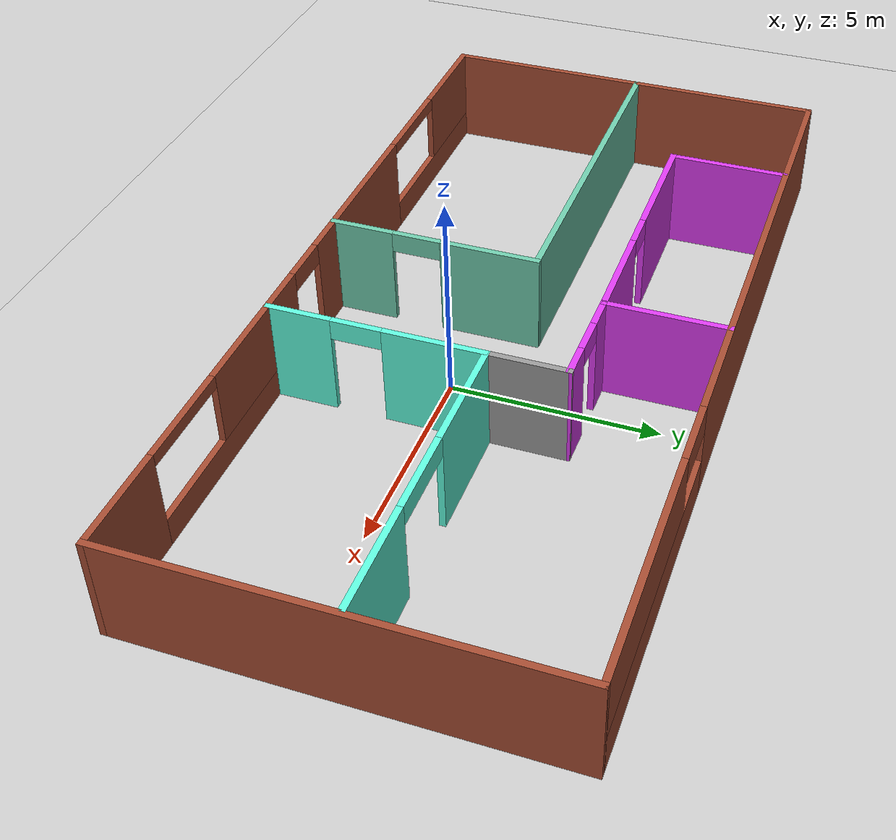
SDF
<sdf version="1.6">
 <world name="default">
  <model name="ground_plane">
   <static>1</static>
   <link name="link">
    <collision name="collision">
     <geometry><plane><normal>0 0 1</normal><size>100 100</size></plane></geometry>
     <surface>
      <contact><collide_bitmask>65535</collide_bitmask></contact>
      <friction><ode><mu>100</mu><mu2>50</mu2></ode></friction>
     </surface>
    </collision>
    <visual name="visual">
     <cast_shadows>0</cast_shadows>
     <geometry><plane><normal>0 0 1</normal><size>100 100</size></plane></geometry>
     <material>
      <script><uri>file://media/materials/scripts/gazebo.material</uri><name>Gazebo/Grey</name></script>
     </material>
    </visual>
   </link>
  </model>
  <model name="Building1">
   <pose>-1.0678 1.2025 0 0 -0 0</pose>
   <link name="Wall_10">
    <collision name="Wall_10_Collision">
     <geometry><box><size>10 0.15 2.5</size></box></geometry>
     <pose>0 0 1.25 0 -0 0</pose>
    </collision>
    <visual name="Wall_10_Visual">
     <pose>0 0 1.25 0 -0 0</pose>
     <geometry><box><size>10 0.15 2.5</size></box></geometry>
     <material>
      <script><uri>file://media/materials/scripts/gazebo.material</uri><name>Gazebo/Bricks</name></script>
      <ambient>1 1 1 1</ambient>
     </material>
     <meta><layer>0</layer></meta>
    </visual>
    <pose>-9.925 0 0 0 -0 1.5708</pose>
   </link>
   <link name="Wall_12">
    <pose>-0 4.925 0 0 -0 0</pose>
    <visual name="Wall_12_Visual_0">
     <pose>-3.67331 0 1.25 0 -0 0</pose>
     <geometry><box><size>12.6534 0.15 2.5</size></box></geometry>
     <material>
      <script><uri>file://media/materials/scripts/gazebo.material</uri><name>Gazebo/Bricks</name></script>
      <ambient>1 1 1 1</ambient>
     </material>
     <meta><layer>0</layer></meta>
    </visual>
    <collision name="Wall_12_Collision_0">
     <geometry><box><size>12.6534 0.15 2.5</size></box></geometry>
     <pose>-3.67331 0 1.25 0 -0 0</pose>
    </collision>
    <visual name="Wall_12_Visual_1">
     <pose>6.32669 0 0.5 0 -0 0</pose>
     <geometry><box><size>7.34662 0.15 1</size></box></geometry>
     <material>
      <script><uri>file://media/materials/scripts/gazebo.material</uri><name>Gazebo/Bricks</name></script>
      <ambient>1 1 1 1</ambient>
     </material>
     <meta><layer>0</layer></meta>
    </visual>
    <collision name="Wall_12_Collision_1">
     <geometry><box><size>7.34662 0.15 1</size></box></geometry>
     <pose>6.32669 0 0.5 0 -0 0</pose>
    </collision>
    <visual name="Wall_12_Visual_2">
     <pose>7.12669 0 1.75 0 -0 0</pose>
     <geometry><box><size>5.74662 0.15 1.5</size></box></geometry>
     <material>
      <script><uri>file://media/materials/scripts/gazebo.material</uri><name>Gazebo/Bricks</name></script>
      <ambient>1 1 1 1</ambient>
     </material>
     <meta><layer>0</layer></meta>
    </visual>
    <collision name="Wall_12_Collision_2">
     <geometry><box><size>5.74662 0.15 1.5</size></box></geometry>
     <pose>7.12669 0 1.75 0 -0 0</pose>
    </collision>
    <visual name="Wall_12_Visual_3">
     <pose>3.45338 0 2.15 0 -0 0</pose>
     <geometry><box><size>1.6 0.15 0.7</size></box></geometry>
     <material>
      <script><uri>file://media/materials/scripts/gazebo.material</uri><name>Gazebo/Bricks</name></script>
      <ambient>1 1 1 1</ambient>
     </material>
     <meta><layer>0</layer></meta>
    </visual>
    <collision name="Wall_12_Collision_3">
     <geometry><box><size>1.6 0.15 0.7</size></box></geometry>
     <pose>3.45338 0 2.15 0 -0 0</pose>
    </collision>
   </link>
   <link name="Wall_13">
    <collision name="Wall_13_Collision">
     <geometry><box><size>10 0.15 2.5</size></box></geometry>
     <pose>0 0 1.25 0 -0 0</pose>
    </collision>
    <visual name="Wall_13_Visual">
     <pose>0 0 1.25 0 -0 0</pose>
     <geometry><box><size>10 0.15 2.5</size></box></geometry>
     <material>
      <script><uri>file://media/materials/scripts/gazebo.material</uri><name>Gazebo/Bricks</name></script>
      <ambient>1 1 1 1</ambient>
     </material>
     <meta><layer>0</layer></meta>
    </visual>
    <pose>9.925 0 0 0 -0 -1.5708</pose>
   </link>
   <link name="Wall_14">
    <pose>-0 -4.925 0 0 -0 3.14159</pose>
    <visual name="Wall_14_Visual_0">
     <pose>-8.75026 0 1.25 0 -0 0</pose>
     <geometry><box><size>2.49948 0.15 2.5</size></box></geometry>
     <material>
      <script><uri>file://media/materials/scripts/gazebo.material</uri><name>Gazebo/Bricks</name></script>
      <ambient>1 1 1 1</ambient>
     </material>
     <meta><layer>0</layer></meta>
    </visual>
    <collision name="Wall_14_Collision_0">
     <geometry><box><size>2.49948 0.15 2.5</size></box></geometry>
     <pose>-8.75026 0 1.25 0 -0 0</pose>
    </collision>
    <visual name="Wall_14_Visual_1">
     <pose>2.37306 0 1.25 0 -0 0</pose>
     <geometry><box><size>4.76763 0.15 2.5</size></box></geometry>
     <material>
      <script><uri>file://media/materials/scripts/gazebo.material</uri><name>Gazebo/Bricks</name></script>
      <ambient>1 1 1 1</ambient>
     </material>
     <meta><layer>0</layer></meta>
    </visual>
    <collision name="Wall_14_Collision_1">
     <geometry><box><size>4.76763 0.15 2.5</size></box></geometry>
     <pose>2.37306 0 1.25 0 -0 0</pose>
    </collision>
    <visual name="Wall_14_Visual_2">
     <pose>-4.35564 0 0.35 0 -0 0</pose>
     <geometry><box><size>6.28977 0.15 0.7</size></box></geometry>
     <material>
      <script><uri>file://media/materials/scripts/gazebo.material</uri><name>Gazebo/Bricks</name></script>
      <ambient>1 1 1 1</ambient>
     </material>
     <meta><layer>0</layer></meta>
    </visual>
    <collision name="Wall_14_Collision_2">
     <geometry><box><size>6.28977 0.15 0.7</size></box></geometry>
     <pose>-4.35564 0 0.35 0 -0 0</pose>
    </collision>
    <visual name="Wall_14_Visual_3">
     <pose>7.37844 0 0.35 0 -0 0</pose>
     <geometry><box><size>5.24313 0.15 0.7</size></box></geometry>
     <material>
      <script><uri>file://media/materials/scripts/gazebo.material</uri><name>Gazebo/Bricks</name></script>
      <ambient>1 1 1 1</ambient>
     </material>
     <meta><layer>0</layer></meta>
    </visual>
    <collision name="Wall_14_Collision_3">
     <geometry><box><size>5.24313 0.15 0.7</size></box></geometry>
     <pose>7.37844 0 0.35 0 -0 0</pose>
    </collision>
    <visual name="Wall_14_Visual_4">
     <pose>-3.10564 0 1.6 0 -0 0</pose>
     <geometry><box><size>3.78977 0.15 1.8</size></box></geometry>
     <material>
      <script><uri>file://media/materials/scripts/gazebo.material</uri><name>Gazebo/Bricks</name></script>
      <ambient>1 1 1 1</ambient>
     </material>
     <meta><layer>0</layer></meta>
    </visual>
    <collision name="Wall_14_Collision_4">
     <geometry><box><size>3.78977 0.15 1.8</size></box></geometry>
     <pose>-3.10564 0 1.6 0 -0 0</pose>
    </collision>
    <visual name="Wall_14_Visual_5">
     <pose>-3.10564 0 1.6 0 -0 0</pose>
     <geometry><box><size>3.78977 0.15 1.8</size></box></geometry>
     <material>
      <script><uri>file://media/materials/scripts/gazebo.material</uri><name>Gazebo/Bricks</name></script>
      <ambient>1 1 1 1</ambient>
     </material>
     <meta><layer>0</layer></meta>
    </visual>
    <collision name="Wall_14_Collision_5">
     <geometry><box><size>3.78977 0.15 1.8</size></box></geometry>
     <pose>-3.10564 0 1.6 0 -0 0</pose>
    </collision>
    <visual name="Wall_14_Visual_6">
     <pose>8.62844 0 1.6 0 -0 0</pose>
     <geometry><box><size>2.74313 0.15 1.8</size></box></geometry>
     <material>
      <script><uri>file://media/materials/scripts/gazebo.material</uri><name>Gazebo/Bricks</name></script>
      <ambient>1 1 1 1</ambient>
     </material>
     <meta><layer>0</layer></meta>
    </visual>
    <collision name="Wall_14_Collision_6">
     <geometry><box><size>2.74313 0.15 1.8</size></box></geometry>
     <pose>8.62844 0 1.6 0 -0 0</pose>
    </collision>
    <visual name="Wall_14_Visual_7">
     <pose>-0.610755 0 2.25 0 -0 0</pose>
     <geometry><box><size>1.2 0.15 0.5</size></box></geometry>
     <material>
      <script><uri>file://media/materials/scripts/gazebo.material</uri><name>Gazebo/Bricks</name></script>
      <ambient>1 1 1 1</ambient>
     </material>
     <meta><layer>0</layer></meta>
    </visual>
    <collision name="Wall_14_Collision_7">
     <geometry><box><size>1.2 0.15 0.5</size></box></geometry>
     <pose>-0.610755 0 2.25 0 -0 0</pose>
    </collision>
    <visual name="Wall_14_Visual_8">
     <pose>-0.610755 0 2.25 0 -0 0</pose>
     <geometry><box><size>1.2 0.15 0.5</size></box></geometry>
     <material>
      <script><uri>file://media/materials/scripts/gazebo.material</uri><name>Gazebo/Bricks</name></script>
      <ambient>1 1 1 1</ambient>
     </material>
     <meta><layer>0</layer></meta>
    </visual>
    <collision name="Wall_14_Collision_8">
     <geometry><box><size>1.2 0.15 0.5</size></box></geometry>
     <pose>-0.610755 0 2.25 0 -0 0</pose>
    </collision>
    <visual name="Wall_14_Visual_9">
     <pose>-6.25052 0 2.35 0 -0 0</pose>
     <geometry><box><size>2.5 0.15 0.3</size></box></geometry>
     <material>
      <script><uri>file://media/materials/scripts/gazebo.material</uri><name>Gazebo/Bricks</name></script>
      <ambient>1 1 1 1</ambient>
     </material>
     <meta><layer>0</layer></meta>
    </visual>
    <collision name="Wall_14_Collision_9">
     <geometry><box><size>2.5 0.15 0.3</size></box></geometry>
     <pose>-6.25052 0 2.35 0 -0 0</pose>
    </collision>
    <visual name="Wall_14_Visual_10">
     <pose>6.00687 0 2.35 0 -0 0</pose>
     <geometry><box><size>2.5 0.15 0.3</size></box></geometry>
     <material>
      <script><uri>file://media/materials/scripts/gazebo.material</uri><name>Gazebo/Bricks</name></script>
      <ambient>1 1 1 1</ambient>
     </material>
     <meta><layer>0</layer></meta>
    </visual>
    <collision name="Wall_14_Collision_10">
     <geometry><box><size>2.5 0.15 0.3</size></box></geometry>
     <pose>6.00687 0 2.35 0 -0 0</pose>
    </collision>
   </link>
   <link name="Wall_16">
    <collision name="Wall_16_Collision">
     <geometry><box><size>9 0.15 2.5</size></box></geometry>
     <pose>0 0 1.25 0 -0 0</pose>
    </collision>
    <visual name="Wall_16_Visual">
     <pose>0 0 1.25 0 -0 0</pose>
     <geometry><box><size>9 0.15 2.5</size></box></geometry>
     <material>
      <script><uri>file://media/materials/scripts/gazebo.material</uri><name>Gazebo/Grey</name></script>
      <ambient>0.435294 0.796078 0.67451 1</ambient>
     </material>
     <meta><layer>0</layer></meta>
    </visual>
    <pose>-5.4835 0.182385 0 0 -0 0</pose>
   </link>
   <link name="Wall_17">
    <pose>-1.0585 -2.36761 0 0 -0 -1.5708</pose>
    <visual name="Wall_17_Visual_0">
     <pose>-1.39742 0 1.25 0 -0 0</pose>
     <geometry><box><size>2.45515 0.15 2.5</size></box></geometry>
     <material>
      <script><uri>file://media/materials/scripts/gazebo.material</uri><name>Gazebo/Grey</name></script>
      <ambient>0.435294 0.796078 0.67451 1</ambient>
     </material>
     <meta><layer>0</layer></meta>
    </visual>
    <collision name="Wall_17_Collision_0">
     <geometry><box><size>2.45515 0.15 2.5</size></box></geometry>
     <pose>-1.39742 0 1.25 0 -0 0</pose>
    </collision>
    <visual name="Wall_17_Visual_1">
     <pose>1.82757 0 1.25 0 -0 0</pose>
     <geometry><box><size>1.59485 0.15 2.5</size></box></geometry>
     <material>
      <script><uri>file://media/materials/scripts/gazebo.material</uri><name>Gazebo/Grey</name></script>
      <ambient>0.435294 0.796078 0.67451 1</ambient>
     </material>
     <meta><layer>0</layer></meta>
    </visual>
    <collision name="Wall_17_Collision_1">
     <geometry><box><size>1.59485 0.15 2.5</size></box></geometry>
     <pose>1.82757 0 1.25 0 -0 0</pose>
    </collision>
    <visual name="Wall_17_Visual_2">
     <pose>0.430149 0 2.25 0 -0 0</pose>
     <geometry><box><size>1.2 0.15 0.5</size></box></geometry>
     <material>
      <script><uri>file://media/materials/scripts/gazebo.material</uri><name>Gazebo/Grey</name></script>
      <ambient>0.435294 0.796078 0.67451 1</ambient>
     </material>
     <meta><layer>0</layer></meta>
    </visual>
    <collision name="Wall_17_Collision_2">
     <geometry><box><size>1.2 0.15 0.5</size></box></geometry>
     <pose>0.430149 0 2.25 0 -0 0</pose>
    </collision>
   </link>
   <link name="Wall_19">
    <pose>6.13498 0.195027 0 0 -0 0</pose>
    <visual name="Wall_19_Visual_0">
     <pose>-2.3286 0 1.25 0 -0 0</pose>
     <geometry><box><size>2.8428 0.15 2.5</size></box></geometry>
     <material>
      <script><uri>file://media/materials/scripts/gazebo.material</uri><name>Gazebo/Grey</name></script>
      <ambient>0.372549 0.988235 0.870588 1</ambient>
     </material>
     <meta><layer>0</layer></meta>
    </visual>
    <collision name="Wall_19_Collision_0">
     <geometry><box><size>2.8428 0.15 2.5</size></box></geometry>
     <pose>-2.3286 0 1.25 0 -0 0</pose>
    </collision>
    <visual name="Wall_19_Visual_1">
     <pose>2.4214 0 1.25 0 -0 0</pose>
     <geometry><box><size>2.6572 0.15 2.5</size></box></geometry>
     <material>
      <script><uri>file://media/materials/scripts/gazebo.material</uri><name>Gazebo/Grey</name></script>
      <ambient>0.372549 0.988235 0.870588 1</ambient>
     </material>
     <meta><layer>0</layer></meta>
    </visual>
    <collision name="Wall_19_Collision_1">
     <geometry><box><size>2.6572 0.15 2.5</size></box></geometry>
     <pose>2.4214 0 1.25 0 -0 0</pose>
    </collision>
    <visual name="Wall_19_Visual_2">
     <pose>0.092803 0 2.25 0 -0 0</pose>
     <geometry><box><size>2 0.15 0.5</size></box></geometry>
     <material>
      <script><uri>file://media/materials/scripts/gazebo.material</uri><name>Gazebo/Grey</name></script>
      <ambient>0.372549 0.988235 0.870588 1</ambient>
     </material>
     <meta><layer>0</layer></meta>
    </visual>
    <collision name="Wall_19_Collision_2">
     <geometry><box><size>2 0.15 0.5</size></box></geometry>
     <pose>0.092803 0 2.25 0 -0 0</pose>
    </collision>
   </link>
   <link name="Wall_21">
    <pose>2.45998 -2.35497 0 0 -0 -1.5708</pose>
    <visual name="Wall_21_Visual_0">
     <pose>-1.3911 0 1.25 0 -0 0</pose>
     <geometry><box><size>2.46779 0.15 2.5</size></box></geometry>
     <material>
      <script><uri>file://media/materials/scripts/gazebo.material</uri><name>Gazebo/Grey</name></script>
      <ambient>0.372549 0.988235 0.870588 1</ambient>
     </material>
     <meta><layer>0</layer></meta>
    </visual>
    <collision name="Wall_21_Collision_0">
     <geometry><box><size>2.46779 0.15 2.5</size></box></geometry>
     <pose>-1.3911 0 1.25 0 -0 0</pose>
    </collision>
    <visual name="Wall_21_Visual_1">
     <pose>1.8339 0 1.25 0 -0 0</pose>
     <geometry><box><size>1.58221 0.15 2.5</size></box></geometry>
     <material>
      <script><uri>file://media/materials/scripts/gazebo.material</uri><name>Gazebo/Grey</name></script>
      <ambient>0.372549 0.988235 0.870588 1</ambient>
     </material>
     <meta><layer>0</layer></meta>
    </visual>
    <collision name="Wall_21_Collision_1">
     <geometry><box><size>1.58221 0.15 2.5</size></box></geometry>
     <pose>1.8339 0 1.25 0 -0 0</pose>
    </collision>
    <visual name="Wall_21_Visual_2">
     <pose>0.442791 0 2.25 0 -0 0</pose>
     <geometry><box><size>1.2 0.15 0.5</size></box></geometry>
     <material>
      <script><uri>file://media/materials/scripts/gazebo.material</uri><name>Gazebo/Grey</name></script>
      <ambient>0.372549 0.988235 0.870588 1</ambient>
     </material>
     <meta><layer>0</layer></meta>
    </visual>
    <collision name="Wall_21_Collision_2">
     <geometry><box><size>1.2 0.15 0.5</size></box></geometry>
     <pose>0.442791 0 2.25 0 -0 0</pose>
    </collision>
   </link>
   <link name="Wall_25">
    <collision name="Wall_25_Collision">
     <geometry><box><size>3 0.15 2.5</size></box></geometry>
     <pose>0 0 1.25 0 -0 0</pose>
    </collision>
    <visual name="Wall_25_Visual">
     <pose>0 0 1.25 0 -0 0</pose>
     <geometry><box><size>3 0.15 2.5</size></box></geometry>
     <material>
      <script><uri>file://media/materials/scripts/gazebo.material</uri><name>Gazebo/Grey</name></script>
      <ambient>0.870588 0.235294 0.941176 1</ambient>
     </material>
     <meta><layer>0</layer></meta>
    </visual>
    <pose>-6.53487 3.46477 0 0 -0 -1.5708</pose>
   </link>
   <link name="Wall_27">
    <collision name="Wall_27_Collision">
     <geometry><box><size>3 0.15 2.5</size></box></geometry>
     <pose>0 0 1.25 0 -0 0</pose>
    </collision>
    <visual name="Wall_27_Visual">
     <pose>0 0 1.25 0 -0 0</pose>
     <geometry><box><size>3 0.15 2.5</size></box></geometry>
     <material>
      <script><uri>file://media/materials/scripts/gazebo.material</uri><name>Gazebo/Grey</name></script>
      <ambient>0.870588 0.235294 0.941176 1</ambient>
     </material>
     <meta><layer>0</layer></meta>
    </visual>
    <pose>-0.02299 3.49092 0 0 -0 -1.5708</pose>
   </link>
   <link name="Wall_28">
    <pose>-3.27893 2.05285 0 0 -0 -3.13758</pose>
    <visual name="Wall_28_Visual_0">
     <pose>-2.02786 0 1.25 0 -0 0</pose>
     <geometry><box><size>2.60622 0.15 2.5</size></box></geometry>
     <material>
      <script><uri>file://media/materials/scripts/gazebo.material</uri><name>Gazebo/Grey</name></script>
      <ambient>0.870588 0.235294 0.941176 1</ambient>
     </material>
     <meta><layer>0</layer></meta>
    </visual>
    <collision name="Wall_28_Collision_0">
     <geometry><box><size>2.60622 0.15 2.5</size></box></geometry>
     <pose>-2.02786 0 1.25 0 -0 0</pose>
    </collision>
    <visual name="Wall_28_Visual_1">
     <pose>1.75311 0 1.25 0 -0 0</pose>
     <geometry><box><size>3.15572 0.15 2.5</size></box></geometry>
     <material>
      <script><uri>file://media/materials/scripts/gazebo.material</uri><name>Gazebo/Grey</name></script>
      <ambient>0.870588 0.235294 0.941176 1</ambient>
     </material>
     <meta><layer>0</layer></meta>
    </visual>
    <collision name="Wall_28_Collision_1">
     <geometry><box><size>3.15572 0.15 2.5</size></box></geometry>
     <pose>1.75311 0 1.25 0 -0 0</pose>
    </collision>
    <visual name="Wall_28_Visual_2">
     <pose>-0.274751 0 2.25 0 -0 0</pose>
     <geometry><box><size>0.9 0.15 0.5</size></box></geometry>
     <material>
      <script><uri>file://media/materials/scripts/gazebo.material</uri><name>Gazebo/Grey</name></script>
      <ambient>0.870588 0.235294 0.941176 1</ambient>
     </material>
     <meta><layer>0</layer></meta>
    </visual>
    <collision name="Wall_28_Collision_2">
     <geometry><box><size>0.9 0.15 0.5</size></box></geometry>
     <pose>-0.274751 0 2.25 0 -0 0</pose>
    </collision>
   </link>
   <link name="Wall_30">
    <collision name="Wall_30_Collision">
     <geometry><box><size>2 0.15 2.5</size></box></geometry>
     <pose>0 0 1.25 0 -0 0</pose>
    </collision>
    <visual name="Wall_30_Visual">
     <pose>0 0 1.25 0 -0 0</pose>
     <geometry><box><size>2 0.15 2.5</size></box></geometry>
     <material>
      <script><uri>file://media/materials/scripts/gazebo.material</uri><name>Gazebo/Grey</name></script>
      <ambient>1 1 1 1</ambient>
     </material>
     <meta><layer>0</layer></meta>
    </visual>
    <pose>2.45998 1.12003 0 0 -0 1.5708</pose>
   </link>
   <link name="Wall_31">
    <pose>1.21849 2.05547 0 0 -0 3.13318</pose>
    <visual name="Wall_31_Visual_0">
     <pose>-0.877056 0 1.25 0 -0 0</pose>
     <geometry><box><size>0.878942 0.15 2.5</size></box></geometry>
     <material>
      <script><uri>file://media/materials/scripts/gazebo.material</uri><name>Gazebo/Grey</name></script>
      <ambient>0.870588 0.235294 0.941176 1</ambient>
     </material>
     <meta><layer>0</layer></meta>
    </visual>
    <collision name="Wall_31_Collision_0">
     <geometry><box><size>0.878942 0.15 2.5</size></box></geometry>
     <pose>-0.877056 0 1.25 0 -0 0</pose>
    </collision>
    <visual name="Wall_31_Visual_1">
     <pose>0.889471 0 1.25 0 -0 0</pose>
     <geometry><box><size>0.854112 0.15 2.5</size></box></geometry>
     <material>
      <script><uri>file://media/materials/scripts/gazebo.material</uri><name>Gazebo/Grey</name></script>
      <ambient>0.870588 0.235294 0.941176 1</ambient>
     </material>
     <meta><layer>0</layer></meta>
    </visual>
    <collision name="Wall_31_Collision_1">
     <geometry><box><size>0.854112 0.15 2.5</size></box></geometry>
     <pose>0.889471 0 1.25 0 -0 0</pose>
    </collision>
    <visual name="Wall_31_Visual_2">
     <pose>0.012415 0 2.25 0 -0 0</pose>
     <geometry><box><size>0.9 0.15 0.5</size></box></geometry>
     <material>
      <script><uri>file://media/materials/scripts/gazebo.material</uri><name>Gazebo/Grey</name></script>
      <ambient>0.870588 0.235294 0.941176 1</ambient>
     </material>
     <meta><layer>0</layer></meta>
    </visual>
    <collision name="Wall_31_Collision_2">
     <geometry><box><size>0.9 0.15 0.5</size></box></geometry>
     <pose>0.012415 0 2.25 0 -0 0</pose>
    </collision>
   </link>
   <static>1</static>
  </model>
  <model name="unit_sphere">
   <link name="link">
    <inertial>
     <mass>1</mass>
     <inertia><ixx>0.1</ixx><ixy>0</ixy><ixz>0</ixz><iyy>0.1</iyy><iyz>0</iyz><izz>0.1</izz></inertia>
    </inertial>
    <visual name="visual">
     <geometry><sphere><radius>0.1</radius></sphere></geometry>
     <material>
      <script><name>Gazebo/Grey</name><uri>file://media/materials/scripts/gazebo.material</uri></script>
      <shader type="pixel"><normal_map>__default__</normal_map></shader>
      <ambient>1 1 1 1</ambient>
      <diffuse>1 1 1 1</diffuse>
      <specular>1 1 1 1</specular>
      <emissive>1 1 1 1</emissive>
     </material>
    </visual>
    <collision name="collision">
     <geometry><sphere><radius>0.1</radius></sphere></geometry>
     <surface>
      <friction>
       <ode><mu>1</mu><mu2>1</mu2><fdir1>0 0 0</fdir1><slip1>0</slip1><slip2>0</slip2></ode>
       <torsional>
        <coefficient>1</coefficient>
        <patch_radius>0</patch_radius>
        <surface_radius>0</surface_radius>
        <use_patch_radius>1</use_patch_radius>
        <ode><slip>0</slip></ode>
       </torsional>
      </friction>
      <bounce><restitution_coefficient>0</restitution_coefficient><threshold>1e+06</threshold></bounce>
      <contact>
       <collide_without_contact>0</collide_without_contact>
       <collide_without_contact_bitmask>1</collide_without_contact_bitmask>
       <collide_bitmask>1</collide_bitmask>
       <ode>
        <soft_cfm>0</soft_cfm>
        <soft_erp>0.2</soft_erp>
        <kp>1e+13</kp>
        <kd>1</kd>
        <max_vel>0.01</max_vel>
        <min_depth>0</min_depth>
       </ode>
       <bullet>
        <split_impulse>1</split_impulse>
        <split_impulse_penetration_threshold>-0.01</split_impulse_penetration_threshold>
        <soft_cfm>0</soft_cfm>
        <soft_erp>0.2</soft_erp>
        <kp>1e+13</kp>
        <kd>1</kd>
       </bullet>
      </contact>
     </surface>
    </collision>
   </link>
   <static>0</static>
   <pose>0.548087 2.45782 0.1 0 -0 0</pose>
  </model>
 </world>
</sdf>
